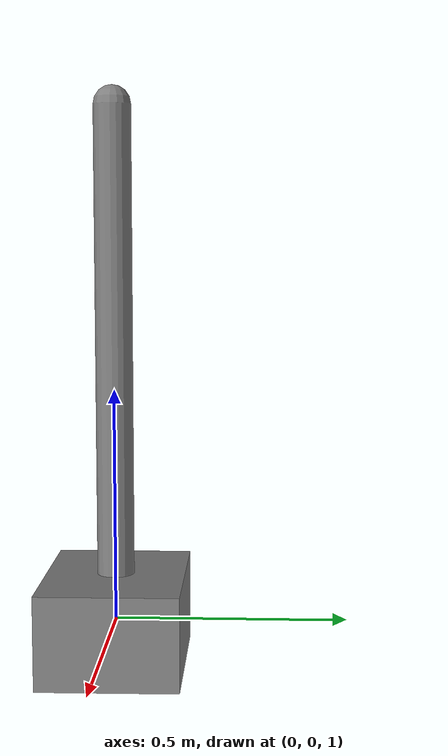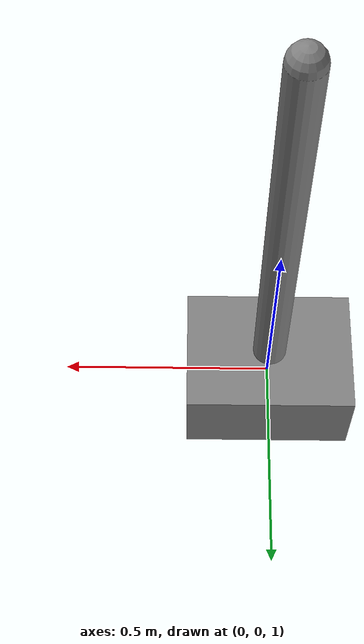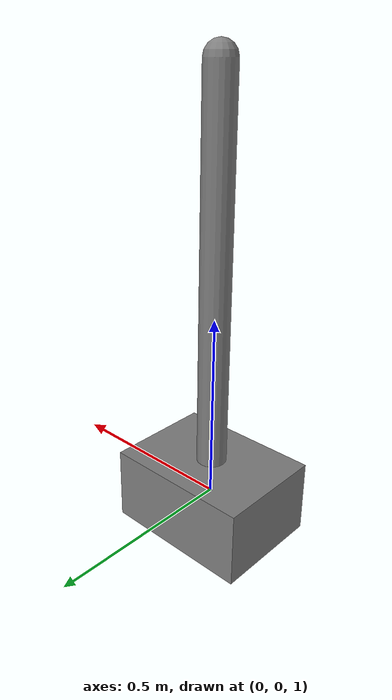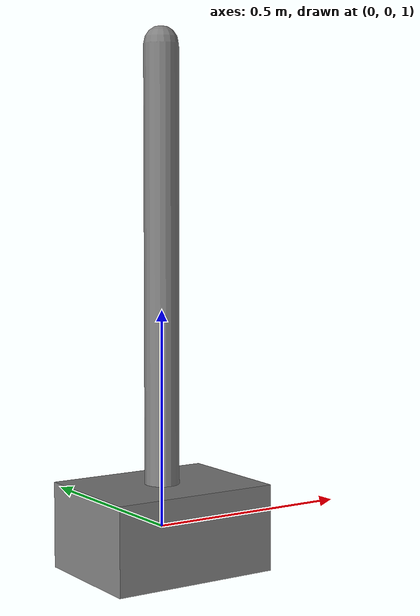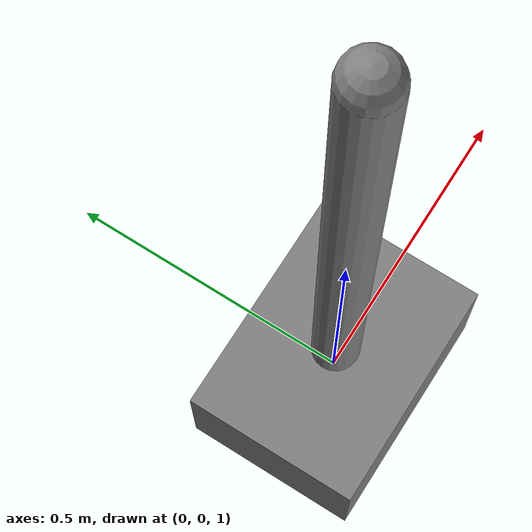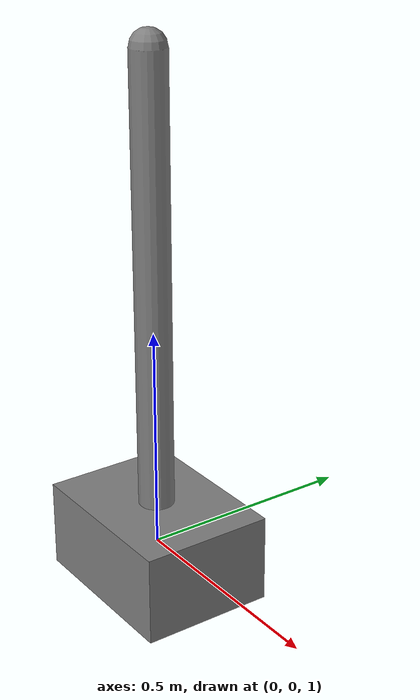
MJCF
<mujoco model="isaac_lab_cartpole_fixture">
  <option timestep="0.008333333333333333"/>
  <worldbody>
    <body name="cart" pos="0 0 1">
      <joint name="slider_to_cart" type="slide" axis="1 0 0" limited="true" range="-4 4" damping="0.01"/>
      <geom name="cart" type="box" size="0.2 0.15 0.1" mass="1"/>
      <body name="pole" pos="0 0 0.1">
        <joint name="cart_to_pole" type="hinge" axis="0 1 0" damping="0.00001"/>
        <geom name="pole" type="capsule" fromto="0 0 0 0 0 1" size="0.04" mass="0.1"/>
      </body>
    </body>
  </worldbody>
  <actuator>
    <motor name="slider_to_cart" joint="slider_to_cart" gear="1" ctrllimited="true" ctrlrange="-100 100"/>
  </actuator>
</mujoco>
